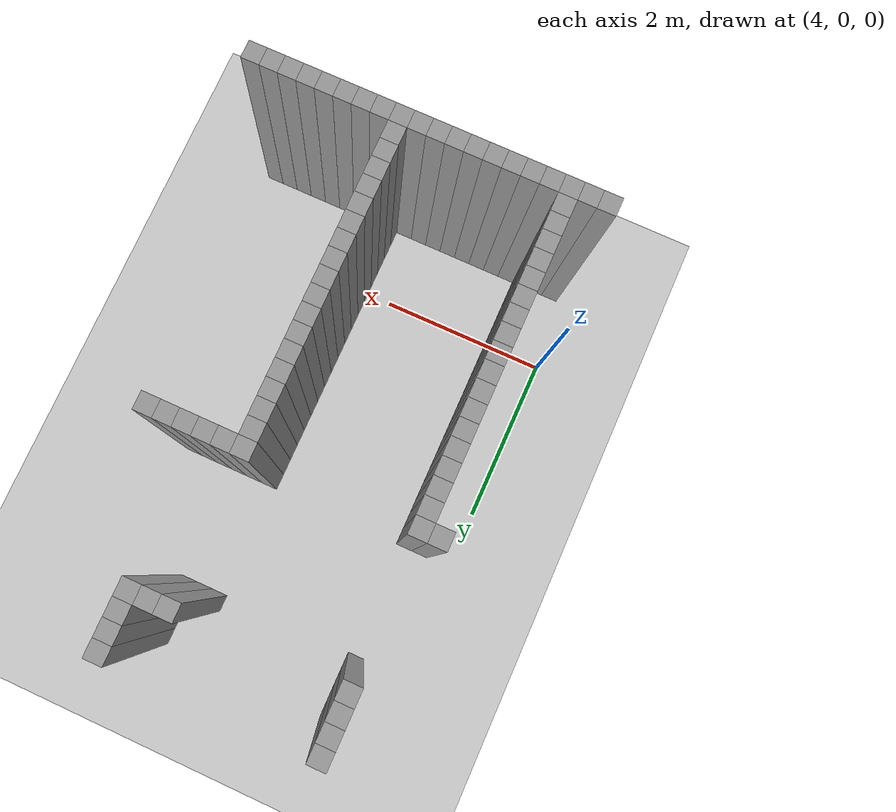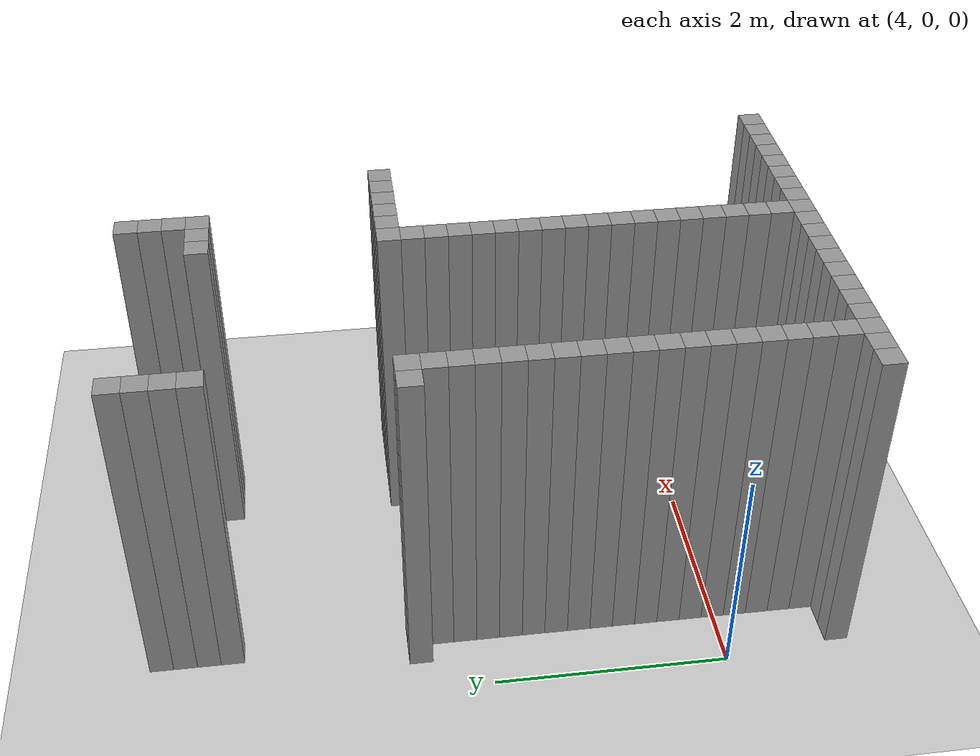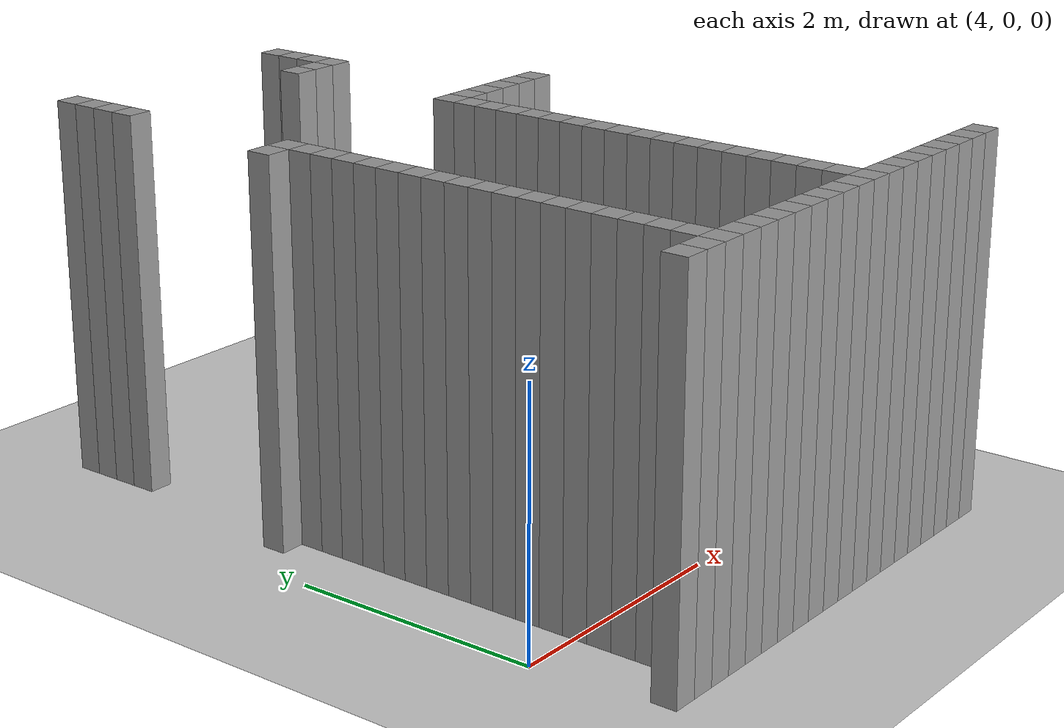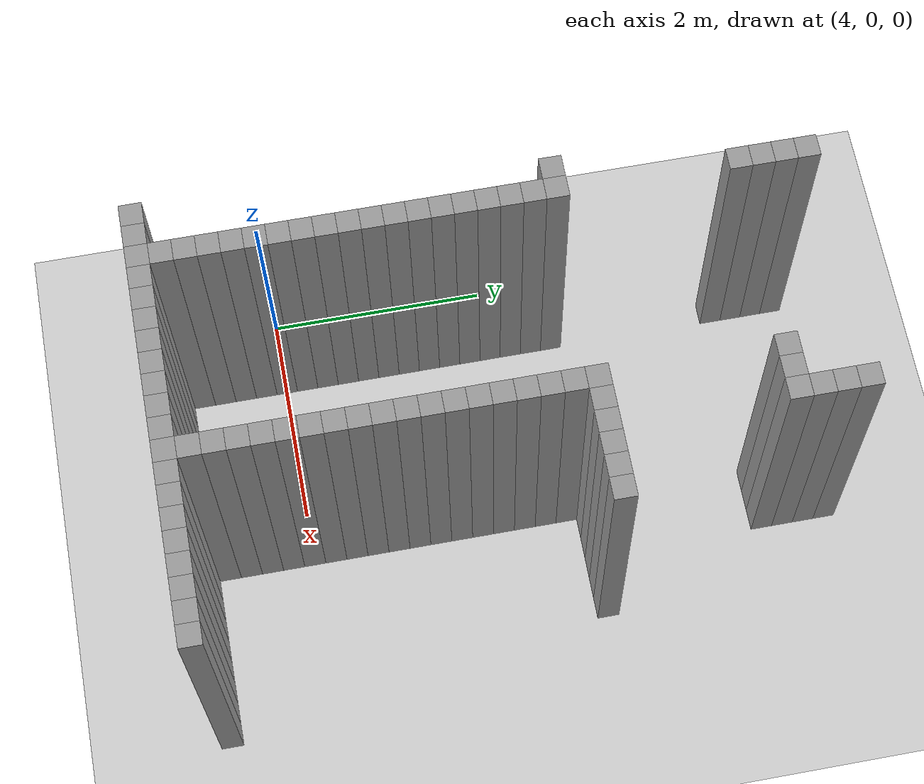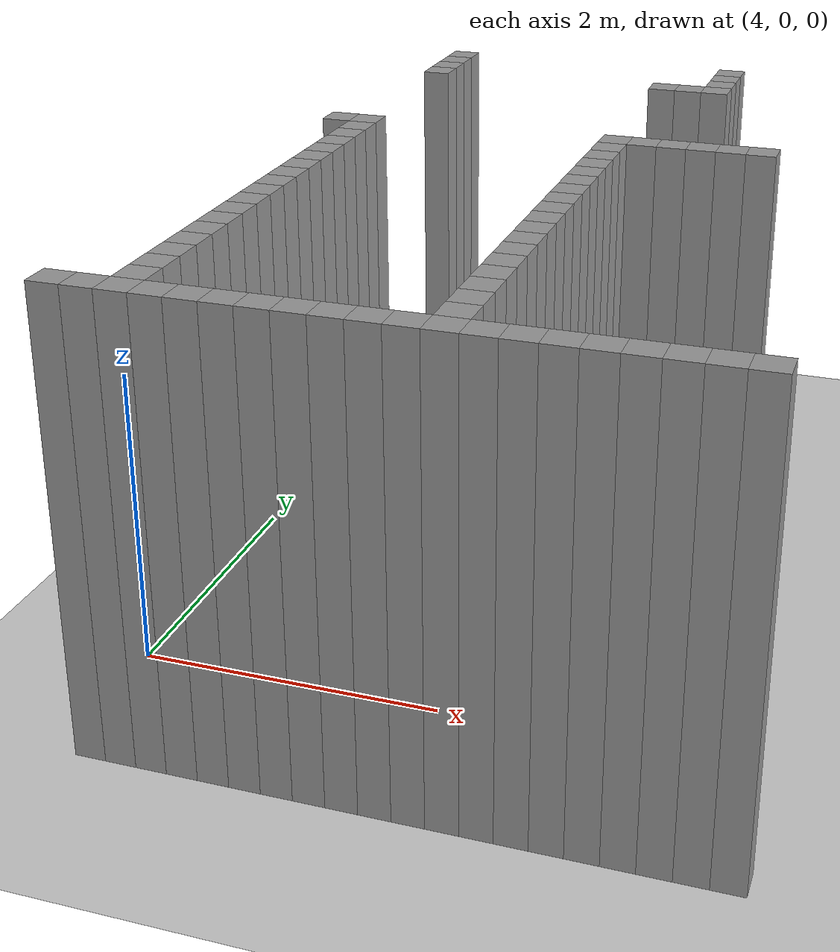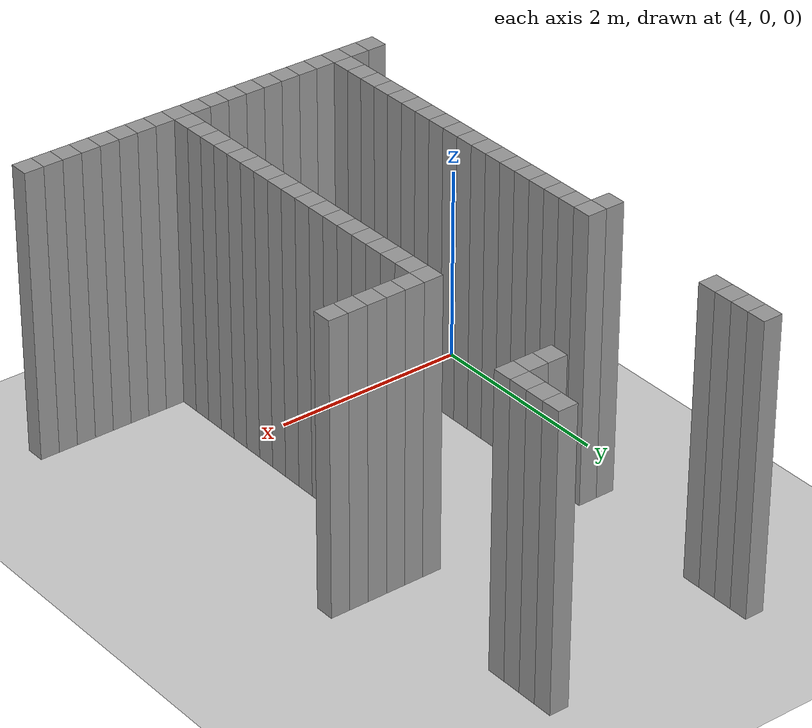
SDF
<sdf version="1.7">
 <world name="default">
  <model name="ground_plane">
   <static>1</static>
   <link name="link">
    <collision name="collision">
     <geometry><plane><normal>0 0 1</normal><size>100 100</size></plane></geometry>
     <surface>
      <contact><collide_bitmask>65535</collide_bitmask></contact>
      <friction><ode><mu>100</mu><mu2>50</mu2></ode></friction>
     </surface>
    </collision>
    <visual name="visual">
     <cast_shadows>0</cast_shadows>
     <geometry><plane><normal>0 0 1</normal><size>100 100</size></plane></geometry>
     <material>
      <script><uri>file://media/materials/scripts/gazebo.material</uri><name>Gazebo/Grey</name></script>
     </material>
    </visual>
   </link>
  </model>
  <model name="image1">
   <pose>-1 -1 0 0 -0 0</pose>
   <link name="Wall_219">
    <collision name="Wall_219_Collision">
     <geometry><box><size>0.2 0.2 3</size></box></geometry>
     <pose>0 0 1.5 0 -0 0</pose>
    </collision>
    <visual name="Wall_219_Visual">
     <pose>0 0 1.5 0 -0 0</pose>
     <geometry><box><size>0.2 0.2 3</size></box></geometry>
     <material>
      <script><uri>file://media/materials/scripts/gazebo.material</uri><name>Gazebo/Grey</name></script>
      <ambient>1 1 1 1</ambient>
     </material>
     <meta><layer>0</layer></meta>
    </visual>
    <pose>5.2 0.0 0 0 -0 0</pose>
   </link>
   <link name="Wall_221">
    <collision name="Wall_221_Collision">
     <geometry><box><size>0.2 0.2 3</size></box></geometry>
     <pose>0 0 1.5 0 -0 0</pose>
    </collision>
    <visual name="Wall_221_Visual">
     <pose>0 0 1.5 0 -0 0</pose>
     <geometry><box><size>0.2 0.2 3</size></box></geometry>
     <material>
      <script><uri>file://media/materials/scripts/gazebo.material</uri><name>Gazebo/Grey</name></script>
      <ambient>1 1 1 1</ambient>
     </material>
     <meta><layer>0</layer></meta>
    </visual>
    <pose>5.4 0.0 0 0 -0 0</pose>
   </link>
   <link name="Wall_222">
    <collision name="Wall_222_Collision">
     <geometry><box><size>0.2 0.2 3</size></box></geometry>
     <pose>0 0 1.5 0 -0 0</pose>
    </collision>
    <visual name="Wall_222_Visual">
     <pose>0 0 1.5 0 -0 0</pose>
     <geometry><box><size>0.2 0.2 3</size></box></geometry>
     <material>
      <script><uri>file://media/materials/scripts/gazebo.material</uri><name>Gazebo/Grey</name></script>
      <ambient>1 1 1 1</ambient>
     </material>
     <meta><layer>0</layer></meta>
    </visual>
    <pose>5.4 3.6 0 0 -0 0</pose>
   </link>
   <link name="Wall_224">
    <collision name="Wall_224_Collision">
     <geometry><box><size>0.2 0.2 3</size></box></geometry>
     <pose>0 0 1.5 0 -0 0</pose>
    </collision>
    <visual name="Wall_224_Visual">
     <pose>0 0 1.5 0 -0 0</pose>
     <geometry><box><size>0.2 0.2 3</size></box></geometry>
     <material>
      <script><uri>file://media/materials/scripts/gazebo.material</uri><name>Gazebo/Grey</name></script>
      <ambient>1 1 1 1</ambient>
     </material>
     <meta><layer>0</layer></meta>
    </visual>
    <pose>5.6000000000000005 0.0 0 0 -0 0</pose>
   </link>
   <link name="Wall_225">
    <collision name="Wall_225_Collision">
     <geometry><box><size>0.2 0.2 3</size></box></geometry>
     <pose>0 0 1.5 0 -0 0</pose>
    </collision>
    <visual name="Wall_225_Visual">
     <pose>0 0 1.5 0 -0 0</pose>
     <geometry><box><size>0.2 0.2 3</size></box></geometry>
     <material>
      <script><uri>file://media/materials/scripts/gazebo.material</uri><name>Gazebo/Grey</name></script>
      <ambient>1 1 1 1</ambient>
     </material>
     <meta><layer>0</layer></meta>
    </visual>
    <pose>5.6000000000000005 0.2 0 0 -0 0</pose>
   </link>
   <link name="Wall_226">
    <collision name="Wall_226_Collision">
     <geometry><box><size>0.2 0.2 3</size></box></geometry>
     <pose>0 0 1.5 0 -0 0</pose>
    </collision>
    <visual name="Wall_226_Visual">
     <pose>0 0 1.5 0 -0 0</pose>
     <geometry><box><size>0.2 0.2 3</size></box></geometry>
     <material>
      <script><uri>file://media/materials/scripts/gazebo.material</uri><name>Gazebo/Grey</name></script>
      <ambient>1 1 1 1</ambient>
     </material>
     <meta><layer>0</layer></meta>
    </visual>
    <pose>5.6000000000000005 0.4 0 0 -0 0</pose>
   </link>
   <link name="Wall_227">
    <collision name="Wall_227_Collision">
     <geometry><box><size>0.2 0.2 3</size></box></geometry>
     <pose>0 0 1.5 0 -0 0</pose>
    </collision>
    <visual name="Wall_227_Visual">
     <pose>0 0 1.5 0 -0 0</pose>
     <geometry><box><size>0.2 0.2 3</size></box></geometry>
     <material>
      <script><uri>file://media/materials/scripts/gazebo.material</uri><name>Gazebo/Grey</name></script>
      <ambient>1 1 1 1</ambient>
     </material>
     <meta><layer>0</layer></meta>
    </visual>
    <pose>5.6000000000000005 0.6000000000000001 0 0 -0 0</pose>
   </link>
   <link name="Wall_228">
    <collision name="Wall_228_Collision">
     <geometry><box><size>0.2 0.2 3</size></box></geometry>
     <pose>0 0 1.5 0 -0 0</pose>
    </collision>
    <visual name="Wall_228_Visual">
     <pose>0 0 1.5 0 -0 0</pose>
     <geometry><box><size>0.2 0.2 3</size></box></geometry>
     <material>
      <script><uri>file://media/materials/scripts/gazebo.material</uri><name>Gazebo/Grey</name></script>
      <ambient>1 1 1 1</ambient>
     </material>
     <meta><layer>0</layer></meta>
    </visual>
    <pose>5.6000000000000005 0.8 0 0 -0 0</pose>
   </link>
   <link name="Wall_229">
    <collision name="Wall_229_Collision">
     <geometry><box><size>0.2 0.2 3</size></box></geometry>
     <pose>0 0 1.5 0 -0 0</pose>
    </collision>
    <visual name="Wall_229_Visual">
     <pose>0 0 1.5 0 -0 0</pose>
     <geometry><box><size>0.2 0.2 3</size></box></geometry>
     <material>
      <script><uri>file://media/materials/scripts/gazebo.material</uri><name>Gazebo/Grey</name></script>
      <ambient>1 1 1 1</ambient>
     </material>
     <meta><layer>0</layer></meta>
    </visual>
    <pose>5.6000000000000005 1.0 0 0 -0 0</pose>
   </link>
   <link name="Wall_230">
    <collision name="Wall_230_Collision">
     <geometry><box><size>0.2 0.2 3</size></box></geometry>
     <pose>0 0 1.5 0 -0 0</pose>
    </collision>
    <visual name="Wall_230_Visual">
     <pose>0 0 1.5 0 -0 0</pose>
     <geometry><box><size>0.2 0.2 3</size></box></geometry>
     <material>
      <script><uri>file://media/materials/scripts/gazebo.material</uri><name>Gazebo/Grey</name></script>
      <ambient>1 1 1 1</ambient>
     </material>
     <meta><layer>0</layer></meta>
    </visual>
    <pose>5.6000000000000005 1.2000000000000002 0 0 -0 0</pose>
   </link>
   <link name="Wall_231">
    <collision name="Wall_231_Collision">
     <geometry><box><size>0.2 0.2 3</size></box></geometry>
     <pose>0 0 1.5 0 -0 0</pose>
    </collision>
    <visual name="Wall_231_Visual">
     <pose>0 0 1.5 0 -0 0</pose>
     <geometry><box><size>0.2 0.2 3</size></box></geometry>
     <material>
      <script><uri>file://media/materials/scripts/gazebo.material</uri><name>Gazebo/Grey</name></script>
      <ambient>1 1 1 1</ambient>
     </material>
     <meta><layer>0</layer></meta>
    </visual>
    <pose>5.6000000000000005 1.4000000000000001 0 0 -0 0</pose>
   </link>
   <link name="Wall_232">
    <collision name="Wall_232_Collision">
     <geometry><box><size>0.2 0.2 3</size></box></geometry>
     <pose>0 0 1.5 0 -0 0</pose>
    </collision>
    <visual name="Wall_232_Visual">
     <pose>0 0 1.5 0 -0 0</pose>
     <geometry><box><size>0.2 0.2 3</size></box></geometry>
     <material>
      <script><uri>file://media/materials/scripts/gazebo.material</uri><name>Gazebo/Grey</name></script>
      <ambient>1 1 1 1</ambient>
     </material>
     <meta><layer>0</layer></meta>
    </visual>
    <pose>5.6000000000000005 1.6 0 0 -0 0</pose>
   </link>
   <link name="Wall_233">
    <collision name="Wall_233_Collision">
     <geometry><box><size>0.2 0.2 3</size></box></geometry>
     <pose>0 0 1.5 0 -0 0</pose>
    </collision>
    <visual name="Wall_233_Visual">
     <pose>0 0 1.5 0 -0 0</pose>
     <geometry><box><size>0.2 0.2 3</size></box></geometry>
     <material>
      <script><uri>file://media/materials/scripts/gazebo.material</uri><name>Gazebo/Grey</name></script>
      <ambient>1 1 1 1</ambient>
     </material>
     <meta><layer>0</layer></meta>
    </visual>
    <pose>5.6000000000000005 1.8 0 0 -0 0</pose>
   </link>
   <link name="Wall_234">
    <collision name="Wall_234_Collision">
     <geometry><box><size>0.2 0.2 3</size></box></geometry>
     <pose>0 0 1.5 0 -0 0</pose>
    </collision>
    <visual name="Wall_234_Visual">
     <pose>0 0 1.5 0 -0 0</pose>
     <geometry><box><size>0.2 0.2 3</size></box></geometry>
     <material>
      <script><uri>file://media/materials/scripts/gazebo.material</uri><name>Gazebo/Grey</name></script>
      <ambient>1 1 1 1</ambient>
     </material>
     <meta><layer>0</layer></meta>
    </visual>
    <pose>5.6000000000000005 2.0 0 0 -0 0</pose>
   </link>
   <link name="Wall_235">
    <collision name="Wall_235_Collision">
     <geometry><box><size>0.2 0.2 3</size></box></geometry>
     <pose>0 0 1.5 0 -0 0</pose>
    </collision>
    <visual name="Wall_235_Visual">
     <pose>0 0 1.5 0 -0 0</pose>
     <geometry><box><size>0.2 0.2 3</size></box></geometry>
     <material>
      <script><uri>file://media/materials/scripts/gazebo.material</uri><name>Gazebo/Grey</name></script>
      <ambient>1 1 1 1</ambient>
     </material>
     <meta><layer>0</layer></meta>
    </visual>
    <pose>5.6000000000000005 2.2 0 0 -0 0</pose>
   </link>
   <link name="Wall_236">
    <collision name="Wall_236_Collision">
     <geometry><box><size>0.2 0.2 3</size></box></geometry>
     <pose>0 0 1.5 0 -0 0</pose>
    </collision>
    <visual name="Wall_236_Visual">
     <pose>0 0 1.5 0 -0 0</pose>
     <geometry><box><size>0.2 0.2 3</size></box></geometry>
     <material>
      <script><uri>file://media/materials/scripts/gazebo.material</uri><name>Gazebo/Grey</name></script>
      <ambient>1 1 1 1</ambient>
     </material>
     <meta><layer>0</layer></meta>
    </visual>
    <pose>5.6000000000000005 2.4000000000000004 0 0 -0 0</pose>
   </link>
   <link name="Wall_237">
    <collision name="Wall_237_Collision">
     <geometry><box><size>0.2 0.2 3</size></box></geometry>
     <pose>0 0 1.5 0 -0 0</pose>
    </collision>
    <visual name="Wall_237_Visual">
     <pose>0 0 1.5 0 -0 0</pose>
     <geometry><box><size>0.2 0.2 3</size></box></geometry>
     <material>
      <script><uri>file://media/materials/scripts/gazebo.material</uri><name>Gazebo/Grey</name></script>
      <ambient>1 1 1 1</ambient>
     </material>
     <meta><layer>0</layer></meta>
    </visual>
    <pose>5.6000000000000005 2.6 0 0 -0 0</pose>
   </link>
   <link name="Wall_238">
    <collision name="Wall_238_Collision">
     <geometry><box><size>0.2 0.2 3</size></box></geometry>
     <pose>0 0 1.5 0 -0 0</pose>
    </collision>
    <visual name="Wall_238_Visual">
     <pose>0 0 1.5 0 -0 0</pose>
     <geometry><box><size>0.2 0.2 3</size></box></geometry>
     <material>
      <script><uri>file://media/materials/scripts/gazebo.material</uri><name>Gazebo/Grey</name></script>
      <ambient>1 1 1 1</ambient>
     </material>
     <meta><layer>0</layer></meta>
    </visual>
    <pose>5.6000000000000005 2.8000000000000003 0 0 -0 0</pose>
   </link>
   <link name="Wall_239">
    <collision name="Wall_239_Collision">
     <geometry><box><size>0.2 0.2 3</size></box></geometry>
     <pose>0 0 1.5 0 -0 0</pose>
    </collision>
    <visual name="Wall_239_Visual">
     <pose>0 0 1.5 0 -0 0</pose>
     <geometry><box><size>0.2 0.2 3</size></box></geometry>
     <material>
      <script><uri>file://media/materials/scripts/gazebo.material</uri><name>Gazebo/Grey</name></script>
      <ambient>1 1 1 1</ambient>
     </material>
     <meta><layer>0</layer></meta>
    </visual>
    <pose>5.6000000000000005 3.0 0 0 -0 0</pose>
   </link>
   <link name="Wall_240">
    <collision name="Wall_240_Collision">
     <geometry><box><size>0.2 0.2 3</size></box></geometry>
     <pose>0 0 1.5 0 -0 0</pose>
    </collision>
    <visual name="Wall_240_Visual">
     <pose>0 0 1.5 0 -0 0</pose>
     <geometry><box><size>0.2 0.2 3</size></box></geometry>
     <material>
      <script><uri>file://media/materials/scripts/gazebo.material</uri><name>Gazebo/Grey</name></script>
      <ambient>1 1 1 1</ambient>
     </material>
     <meta><layer>0</layer></meta>
    </visual>
    <pose>5.6000000000000005 3.2 0 0 -0 0</pose>
   </link>
   <link name="Wall_241">
    <collision name="Wall_241_Collision">
     <geometry><box><size>0.2 0.2 3</size></box></geometry>
     <pose>0 0 1.5 0 -0 0</pose>
    </collision>
    <visual name="Wall_241_Visual">
     <pose>0 0 1.5 0 -0 0</pose>
     <geometry><box><size>0.2 0.2 3</size></box></geometry>
     <material>
      <script><uri>file://media/materials/scripts/gazebo.material</uri><name>Gazebo/Grey</name></script>
      <ambient>1 1 1 1</ambient>
     </material>
     <meta><layer>0</layer></meta>
    </visual>
    <pose>5.6000000000000005 3.4000000000000004 0 0 -0 0</pose>
   </link>
   <link name="Wall_242">
    <collision name="Wall_242_Collision">
     <geometry><box><size>0.2 0.2 3</size></box></geometry>
     <pose>0 0 1.5 0 -0 0</pose>
    </collision>
    <visual name="Wall_242_Visual">
     <pose>0 0 1.5 0 -0 0</pose>
     <geometry><box><size>0.2 0.2 3</size></box></geometry>
     <material>
      <script><uri>file://media/materials/scripts/gazebo.material</uri><name>Gazebo/Grey</name></script>
      <ambient>1 1 1 1</ambient>
     </material>
     <meta><layer>0</layer></meta>
    </visual>
    <pose>5.6000000000000005 3.6 0 0 -0 0</pose>
   </link>
   <link name="Wall_243">
    <collision name="Wall_243_Collision">
     <geometry><box><size>0.2 0.2 3</size></box></geometry>
     <pose>0 0 1.5 0 -0 0</pose>
    </collision>
    <visual name="Wall_243_Visual">
     <pose>0 0 1.5 0 -0 0</pose>
     <geometry><box><size>0.2 0.2 3</size></box></geometry>
     <material>
      <script><uri>file://media/materials/scripts/gazebo.material</uri><name>Gazebo/Grey</name></script>
      <ambient>1 1 1 1</ambient>
     </material>
     <meta><layer>0</layer></meta>
    </visual>
    <pose>5.6000000000000005 5.2 0 0 -0 0</pose>
   </link>
   <link name="Wall_244">
    <collision name="Wall_244_Collision">
     <geometry><box><size>0.2 0.2 3</size></box></geometry>
     <pose>0 0 1.5 0 -0 0</pose>
    </collision>
    <visual name="Wall_244_Visual">
     <pose>0 0 1.5 0 -0 0</pose>
     <geometry><box><size>0.2 0.2 3</size></box></geometry>
     <material>
      <script><uri>file://media/materials/scripts/gazebo.material</uri><name>Gazebo/Grey</name></script>
      <ambient>1 1 1 1</ambient>
     </material>
     <meta><layer>0</layer></meta>
    </visual>
    <pose>5.6000000000000005 5.4 0 0 -0 0</pose>
   </link>
   <link name="Wall_245">
    <collision name="Wall_245_Collision">
     <geometry><box><size>0.2 0.2 3</size></box></geometry>
     <pose>0 0 1.5 0 -0 0</pose>
    </collision>
    <visual name="Wall_245_Visual">
     <pose>0 0 1.5 0 -0 0</pose>
     <geometry><box><size>0.2 0.2 3</size></box></geometry>
     <material>
      <script><uri>file://media/materials/scripts/gazebo.material</uri><name>Gazebo/Grey</name></script>
      <ambient>1 1 1 1</ambient>
     </material>
     <meta><layer>0</layer></meta>
    </visual>
    <pose>5.6000000000000005 5.6000000000000005 0 0 -0 0</pose>
   </link>
   <link name="Wall_246">
    <collision name="Wall_246_Collision">
     <geometry><box><size>0.2 0.2 3</size></box></geometry>
     <pose>0 0 1.5 0 -0 0</pose>
    </collision>
    <visual name="Wall_246_Visual">
     <pose>0 0 1.5 0 -0 0</pose>
     <geometry><box><size>0.2 0.2 3</size></box></geometry>
     <material>
      <script><uri>file://media/materials/scripts/gazebo.material</uri><name>Gazebo/Grey</name></script>
      <ambient>1 1 1 1</ambient>
     </material>
     <meta><layer>0</layer></meta>
    </visual>
    <pose>5.6000000000000005 5.800000000000001 0 0 -0 0</pose>
   </link>
   <link name="Wall_256">
    <collision name="Wall_256_Collision">
     <geometry><box><size>0.2 0.2 3</size></box></geometry>
     <pose>0 0 1.5 0 -0 0</pose>
    </collision>
    <visual name="Wall_256_Visual">
     <pose>0 0 1.5 0 -0 0</pose>
     <geometry><box><size>0.2 0.2 3</size></box></geometry>
     <material>
      <script><uri>file://media/materials/scripts/gazebo.material</uri><name>Gazebo/Grey</name></script>
      <ambient>1 1 1 1</ambient>
     </material>
     <meta><layer>0</layer></meta>
    </visual>
    <pose>5.800000000000001 0.0 0 0 -0 0</pose>
   </link>
   <link name="Wall_259">
    <collision name="Wall_259_Collision">
     <geometry><box><size>0.2 0.2 3</size></box></geometry>
     <pose>0 0 1.5 0 -0 0</pose>
    </collision>
    <visual name="Wall_259_Visual">
     <pose>0 0 1.5 0 -0 0</pose>
     <geometry><box><size>0.2 0.2 3</size></box></geometry>
     <material>
      <script><uri>file://media/materials/scripts/gazebo.material</uri><name>Gazebo/Grey</name></script>
      <ambient>1 1 1 1</ambient>
     </material>
     <meta><layer>0</layer></meta>
    </visual>
    <pose>6.0 0.0 0 0 -0 0</pose>
   </link>
   <link name="Wall_262">
    <collision name="Wall_262_Collision">
     <geometry><box><size>0.2 0.2 3</size></box></geometry>
     <pose>0 0 1.5 0 -0 0</pose>
    </collision>
    <visual name="Wall_262_Visual">
     <pose>0 0 1.5 0 -0 0</pose>
     <geometry><box><size>0.2 0.2 3</size></box></geometry>
     <material>
      <script><uri>file://media/materials/scripts/gazebo.material</uri><name>Gazebo/Grey</name></script>
      <ambient>1 1 1 1</ambient>
     </material>
     <meta><layer>0</layer></meta>
    </visual>
    <pose>6.2 0.0 0 0 -0 0</pose>
   </link>
   <link name="Wall_265">
    <collision name="Wall_265_Collision">
     <geometry><box><size>0.2 0.2 3</size></box></geometry>
     <pose>0 0 1.5 0 -0 0</pose>
    </collision>
    <visual name="Wall_265_Visual">
     <pose>0 0 1.5 0 -0 0</pose>
     <geometry><box><size>0.2 0.2 3</size></box></geometry>
     <material>
      <script><uri>file://media/materials/scripts/gazebo.material</uri><name>Gazebo/Grey</name></script>
      <ambient>1 1 1 1</ambient>
     </material>
     <meta><layer>0</layer></meta>
    </visual>
    <pose>6.4 0.0 0 0 -0 0</pose>
   </link>
   <link name="Wall_283">
    <collision name="Wall_283_Collision">
     <geometry><box><size>0.2 0.2 3</size></box></geometry>
     <pose>0 0 1.5 0 -0 0</pose>
    </collision>
    <visual name="Wall_283_Visual">
     <pose>0 0 1.5 0 -0 0</pose>
     <geometry><box><size>0.2 0.2 3</size></box></geometry>
     <material>
      <script><uri>file://media/materials/scripts/gazebo.material</uri><name>Gazebo/Grey</name></script>
      <ambient>1 1 1 1</ambient>
     </material>
     <meta><layer>0</layer></meta>
    </visual>
    <pose>6.6000000000000005 0.0 0 0 -0 0</pose>
   </link>
   <link name="Wall_287">
    <collision name="Wall_287_Collision">
     <geometry><box><size>0.2 0.2 3</size></box></geometry>
     <pose>0 0 1.5 0 -0 0</pose>
    </collision>
    <visual name="Wall_287_Visual">
     <pose>0 0 1.5 0 -0 0</pose>
     <geometry><box><size>0.2 0.2 3</size></box></geometry>
     <material>
      <script><uri>file://media/materials/scripts/gazebo.material</uri><name>Gazebo/Grey</name></script>
      <ambient>1 1 1 1</ambient>
     </material>
     <meta><layer>0</layer></meta>
    </visual>
    <pose>6.800000000000001 0.0 0 0 -0 0</pose>
   </link>
   <link name="Wall_291">
    <collision name="Wall_291_Collision">
     <geometry><box><size>0.2 0.2 3</size></box></geometry>
     <pose>0 0 1.5 0 -0 0</pose>
    </collision>
    <visual name="Wall_291_Visual">
     <pose>0 0 1.5 0 -0 0</pose>
     <geometry><box><size>0.2 0.2 3</size></box></geometry>
     <material>
      <script><uri>file://media/materials/scripts/gazebo.material</uri><name>Gazebo/Grey</name></script>
      <ambient>1 1 1 1</ambient>
     </material>
     <meta><layer>0</layer></meta>
    </visual>
    <pose>7.0 0.0 0 0 -0 0</pose>
   </link>
   <link name="Wall_295">
    <collision name="Wall_295_Collision">
     <geometry><box><size>0.2 0.2 3</size></box></geometry>
     <pose>0 0 1.5 0 -0 0</pose>
    </collision>
    <visual name="Wall_295_Visual">
     <pose>0 0 1.5 0 -0 0</pose>
     <geometry><box><size>0.2 0.2 3</size></box></geometry>
     <material>
      <script><uri>file://media/materials/scripts/gazebo.material</uri><name>Gazebo/Grey</name></script>
      <ambient>1 1 1 1</ambient>
     </material>
     <meta><layer>0</layer></meta>
    </visual>
    <pose>7.2 0.0 0 0 -0 0</pose>
   </link>
   <link name="Wall_299">
    <collision name="Wall_299_Collision">
     <geometry><box><size>0.2 0.2 3</size></box></geometry>
     <pose>0 0 1.5 0 -0 0</pose>
    </collision>
    <visual name="Wall_299_Visual">
     <pose>0 0 1.5 0 -0 0</pose>
     <geometry><box><size>0.2 0.2 3</size></box></geometry>
     <material>
      <script><uri>file://media/materials/scripts/gazebo.material</uri><name>Gazebo/Grey</name></script>
      <ambient>1 1 1 1</ambient>
     </material>
     <meta><layer>0</layer></meta>
    </visual>
    <pose>7.4 0.0 0 0 -0 0</pose>
   </link>
   <link name="Wall_300">
    <collision name="Wall_300_Collision">
     <geometry><box><size>0.2 0.2 3</size></box></geometry>
     <pose>0 0 1.5 0 -0 0</pose>
    </collision>
    <visual name="Wall_300_Visual">
     <pose>0 0 1.5 0 -0 0</pose>
     <geometry><box><size>0.2 0.2 3</size></box></geometry>
     <material>
      <script><uri>file://media/materials/scripts/gazebo.material</uri><name>Gazebo/Grey</name></script>
      <ambient>1 1 1 1</ambient>
     </material>
     <meta><layer>0</layer></meta>
    </visual>
    <pose>7.4 0.2 0 0 -0 0</pose>
   </link>
   <link name="Wall_301">
    <collision name="Wall_301_Collision">
     <geometry><box><size>0.2 0.2 3</size></box></geometry>
     <pose>0 0 1.5 0 -0 0</pose>
    </collision>
    <visual name="Wall_301_Visual">
     <pose>0 0 1.5 0 -0 0</pose>
     <geometry><box><size>0.2 0.2 3</size></box></geometry>
     <material>
      <script><uri>file://media/materials/scripts/gazebo.material</uri><name>Gazebo/Grey</name></script>
      <ambient>1 1 1 1</ambient>
     </material>
     <meta><layer>0</layer></meta>
    </visual>
    <pose>7.4 0.4 0 0 -0 0</pose>
   </link>
   <link name="Wall_302">
    <collision name="Wall_302_Collision">
     <geometry><box><size>0.2 0.2 3</size></box></geometry>
     <pose>0 0 1.5 0 -0 0</pose>
    </collision>
    <visual name="Wall_302_Visual">
     <pose>0 0 1.5 0 -0 0</pose>
     <geometry><box><size>0.2 0.2 3</size></box></geometry>
     <material>
      <script><uri>file://media/materials/scripts/gazebo.material</uri><name>Gazebo/Grey</name></script>
      <ambient>1 1 1 1</ambient>
     </material>
     <meta><layer>0</layer></meta>
    </visual>
    <pose>7.4 0.6000000000000001 0 0 -0 0</pose>
   </link>
   <link name="Wall_303">
    <collision name="Wall_303_Collision">
     <geometry><box><size>0.2 0.2 3</size></box></geometry>
     <pose>0 0 1.5 0 -0 0</pose>
    </collision>
    <visual name="Wall_303_Visual">
     <pose>0 0 1.5 0 -0 0</pose>
     <geometry><box><size>0.2 0.2 3</size></box></geometry>
     <material>
      <script><uri>file://media/materials/scripts/gazebo.material</uri><name>Gazebo/Grey</name></script>
      <ambient>1 1 1 1</ambient>
     </material>
     <meta><layer>0</layer></meta>
    </visual>
    <pose>7.4 0.8 0 0 -0 0</pose>
   </link>
   <link name="Wall_304">
    <collision name="Wall_304_Collision">
     <geometry><box><size>0.2 0.2 3</size></box></geometry>
     <pose>0 0 1.5 0 -0 0</pose>
    </collision>
    <visual name="Wall_304_Visual">
     <pose>0 0 1.5 0 -0 0</pose>
     <geometry><box><size>0.2 0.2 3</size></box></geometry>
     <material>
      <script><uri>file://media/materials/scripts/gazebo.material</uri><name>Gazebo/Grey</name></script>
      <ambient>1 1 1 1</ambient>
     </material>
     <meta><layer>0</layer></meta>
    </visual>
    <pose>7.4 1.0 0 0 -0 0</pose>
   </link>
   <link name="Wall_305">
    <collision name="Wall_305_Collision">
     <geometry><box><size>0.2 0.2 3</size></box></geometry>
     <pose>0 0 1.5 0 -0 0</pose>
    </collision>
    <visual name="Wall_305_Visual">
     <pose>0 0 1.5 0 -0 0</pose>
     <geometry><box><size>0.2 0.2 3</size></box></geometry>
     <material>
      <script><uri>file://media/materials/scripts/gazebo.material</uri><name>Gazebo/Grey</name></script>
      <ambient>1 1 1 1</ambient>
     </material>
     <meta><layer>0</layer></meta>
    </visual>
    <pose>7.4 1.2000000000000002 0 0 -0 0</pose>
   </link>
   <link name="Wall_306">
    <collision name="Wall_306_Collision">
     <geometry><box><size>0.2 0.2 3</size></box></geometry>
     <pose>0 0 1.5 0 -0 0</pose>
    </collision>
    <visual name="Wall_306_Visual">
     <pose>0 0 1.5 0 -0 0</pose>
     <geometry><box><size>0.2 0.2 3</size></box></geometry>
     <material>
      <script><uri>file://media/materials/scripts/gazebo.material</uri><name>Gazebo/Grey</name></script>
      <ambient>1 1 1 1</ambient>
     </material>
     <meta><layer>0</layer></meta>
    </visual>
    <pose>7.4 1.4000000000000001 0 0 -0 0</pose>
   </link>
   <link name="Wall_307">
    <collision name="Wall_307_Collision">
     <geometry><box><size>0.2 0.2 3</size></box></geometry>
     <pose>0 0 1.5 0 -0 0</pose>
    </collision>
    <visual name="Wall_307_Visual">
     <pose>0 0 1.5 0 -0 0</pose>
     <geometry><box><size>0.2 0.2 3</size></box></geometry>
     <material>
      <script><uri>file://media/materials/scripts/gazebo.material</uri><name>Gazebo/Grey</name></script>
      <ambient>1 1 1 1</ambient>
     </material>
     <meta><layer>0</layer></meta>
    </visual>
    <pose>7.4 1.6 0 0 -0 0</pose>
   </link>
   <link name="Wall_308">
    <collision name="Wall_308_Collision">
     <geometry><box><size>0.2 0.2 3</size></box></geometry>
     <pose>0 0 1.5 0 -0 0</pose>
    </collision>
    <visual name="Wall_308_Visual">
     <pose>0 0 1.5 0 -0 0</pose>
     <geometry><box><size>0.2 0.2 3</size></box></geometry>
     <material>
      <script><uri>file://media/materials/scripts/gazebo.material</uri><name>Gazebo/Grey</name></script>
      <ambient>1 1 1 1</ambient>
     </material>
     <meta><layer>0</layer></meta>
    </visual>
    <pose>7.4 1.8 0 0 -0 0</pose>
   </link>
   <link name="Wall_309">
    <collision name="Wall_309_Collision">
     <geometry><box><size>0.2 0.2 3</size></box></geometry>
     <pose>0 0 1.5 0 -0 0</pose>
    </collision>
    <visual name="Wall_309_Visual">
     <pose>0 0 1.5 0 -0 0</pose>
     <geometry><box><size>0.2 0.2 3</size></box></geometry>
     <material>
      <script><uri>file://media/materials/scripts/gazebo.material</uri><name>Gazebo/Grey</name></script>
      <ambient>1 1 1 1</ambient>
     </material>
     <meta><layer>0</layer></meta>
    </visual>
    <pose>7.4 2.0 0 0 -0 0</pose>
   </link>
   <link name="Wall_310">
    <collision name="Wall_310_Collision">
     <geometry><box><size>0.2 0.2 3</size></box></geometry>
     <pose>0 0 1.5 0 -0 0</pose>
    </collision>
    <visual name="Wall_310_Visual">
     <pose>0 0 1.5 0 -0 0</pose>
     <geometry><box><size>0.2 0.2 3</size></box></geometry>
     <material>
      <script><uri>file://media/materials/scripts/gazebo.material</uri><name>Gazebo/Grey</name></script>
      <ambient>1 1 1 1</ambient>
     </material>
     <meta><layer>0</layer></meta>
    </visual>
    <pose>7.4 2.2 0 0 -0 0</pose>
   </link>
   <link name="Wall_311">
    <collision name="Wall_311_Collision">
     <geometry><box><size>0.2 0.2 3</size></box></geometry>
     <pose>0 0 1.5 0 -0 0</pose>
    </collision>
    <visual name="Wall_311_Visual">
     <pose>0 0 1.5 0 -0 0</pose>
     <geometry><box><size>0.2 0.2 3</size></box></geometry>
     <material>
      <script><uri>file://media/materials/scripts/gazebo.material</uri><name>Gazebo/Grey</name></script>
      <ambient>1 1 1 1</ambient>
     </material>
     <meta><layer>0</layer></meta>
    </visual>
    <pose>7.4 2.4000000000000004 0 0 -0 0</pose>
   </link>
   <link name="Wall_312">
    <collision name="Wall_312_Collision">
     <geometry><box><size>0.2 0.2 3</size></box></geometry>
     <pose>0 0 1.5 0 -0 0</pose>
    </collision>
    <visual name="Wall_312_Visual">
     <pose>0 0 1.5 0 -0 0</pose>
     <geometry><box><size>0.2 0.2 3</size></box></geometry>
     <material>
      <script><uri>file://media/materials/scripts/gazebo.material</uri><name>Gazebo/Grey</name></script>
      <ambient>1 1 1 1</ambient>
     </material>
     <meta><layer>0</layer></meta>
    </visual>
    <pose>7.4 2.6 0 0 -0 0</pose>
   </link>
   <link name="Wall_313">
    <collision name="Wall_313_Collision">
     <geometry><box><size>0.2 0.2 3</size></box></geometry>
     <pose>0 0 1.5 0 -0 0</pose>
    </collision>
    <visual name="Wall_313_Visual">
     <pose>0 0 1.5 0 -0 0</pose>
     <geometry><box><size>0.2 0.2 3</size></box></geometry>
     <material>
      <script><uri>file://media/materials/scripts/gazebo.material</uri><name>Gazebo/Grey</name></script>
      <ambient>1 1 1 1</ambient>
     </material>
     <meta><layer>0</layer></meta>
    </visual>
    <pose>7.4 2.8000000000000003 0 0 -0 0</pose>
   </link>
   <link name="Wall_314">
    <collision name="Wall_314_Collision">
     <geometry><box><size>0.2 0.2 3</size></box></geometry>
     <pose>0 0 1.5 0 -0 0</pose>
    </collision>
    <visual name="Wall_314_Visual">
     <pose>0 0 1.5 0 -0 0</pose>
     <geometry><box><size>0.2 0.2 3</size></box></geometry>
     <material>
      <script><uri>file://media/materials/scripts/gazebo.material</uri><name>Gazebo/Grey</name></script>
      <ambient>1 1 1 1</ambient>
     </material>
     <meta><layer>0</layer></meta>
    </visual>
    <pose>7.4 3.0 0 0 -0 0</pose>
   </link>
   <link name="Wall_315">
    <collision name="Wall_315_Collision">
     <geometry><box><size>0.2 0.2 3</size></box></geometry>
     <pose>0 0 1.5 0 -0 0</pose>
    </collision>
    <visual name="Wall_315_Visual">
     <pose>0 0 1.5 0 -0 0</pose>
     <geometry><box><size>0.2 0.2 3</size></box></geometry>
     <material>
      <script><uri>file://media/materials/scripts/gazebo.material</uri><name>Gazebo/Grey</name></script>
      <ambient>1 1 1 1</ambient>
     </material>
     <meta><layer>0</layer></meta>
    </visual>
    <pose>7.4 3.2 0 0 -0 0</pose>
   </link>
   <link name="Wall_316">
    <collision name="Wall_316_Collision">
     <geometry><box><size>0.2 0.2 3</size></box></geometry>
     <pose>0 0 1.5 0 -0 0</pose>
    </collision>
    <visual name="Wall_316_Visual">
     <pose>0 0 1.5 0 -0 0</pose>
     <geometry><box><size>0.2 0.2 3</size></box></geometry>
     <material>
      <script><uri>file://media/materials/scripts/gazebo.material</uri><name>Gazebo/Grey</name></script>
      <ambient>1 1 1 1</ambient>
     </material>
     <meta><layer>0</layer></meta>
    </visual>
    <pose>7.4 3.4000000000000004 0 0 -0 0</pose>
   </link>
   <link name="Wall_317">
    <collision name="Wall_317_Collision">
     <geometry><box><size>0.2 0.2 3</size></box></geometry>
     <pose>0 0 1.5 0 -0 0</pose>
    </collision>
    <visual name="Wall_317_Visual">
     <pose>0 0 1.5 0 -0 0</pose>
     <geometry><box><size>0.2 0.2 3</size></box></geometry>
     <material>
      <script><uri>file://media/materials/scripts/gazebo.material</uri><name>Gazebo/Grey</name></script>
      <ambient>1 1 1 1</ambient>
     </material>
     <meta><layer>0</layer></meta>
    </visual>
    <pose>7.4 3.6 0 0 -0 0</pose>
   </link>
   <link name="Wall_318">
    <collision name="Wall_318_Collision">
     <geometry><box><size>0.2 0.2 3</size></box></geometry>
     <pose>0 0 1.5 0 -0 0</pose>
    </collision>
    <visual name="Wall_318_Visual">
     <pose>0 0 1.5 0 -0 0</pose>
     <geometry><box><size>0.2 0.2 3</size></box></geometry>
     <material>
      <script><uri>file://media/materials/scripts/gazebo.material</uri><name>Gazebo/Grey</name></script>
      <ambient>1 1 1 1</ambient>
     </material>
     <meta><layer>0</layer></meta>
    </visual>
    <pose>7.4 5.2 0 0 -0 0</pose>
   </link>
   <link name="Wall_321">
    <collision name="Wall_321_Collision">
     <geometry><box><size>0.2 0.2 3</size></box></geometry>
     <pose>0 0 1.5 0 -0 0</pose>
    </collision>
    <visual name="Wall_321_Visual">
     <pose>0 0 1.5 0 -0 0</pose>
     <geometry><box><size>0.2 0.2 3</size></box></geometry>
     <material>
      <script><uri>file://media/materials/scripts/gazebo.material</uri><name>Gazebo/Grey</name></script>
      <ambient>1 1 1 1</ambient>
     </material>
     <meta><layer>0</layer></meta>
    </visual>
    <pose>7.6000000000000005 0.0 0 0 -0 0</pose>
   </link>
   <link name="Wall_322">
    <collision name="Wall_322_Collision">
     <geometry><box><size>0.2 0.2 3</size></box></geometry>
     <pose>0 0 1.5 0 -0 0</pose>
    </collision>
    <visual name="Wall_322_Visual">
     <pose>0 0 1.5 0 -0 0</pose>
     <geometry><box><size>0.2 0.2 3</size></box></geometry>
     <material>
      <script><uri>file://media/materials/scripts/gazebo.material</uri><name>Gazebo/Grey</name></script>
      <ambient>1 1 1 1</ambient>
     </material>
     <meta><layer>0</layer></meta>
    </visual>
    <pose>7.6000000000000005 3.6 0 0 -0 0</pose>
   </link>
   <link name="Wall_323">
    <collision name="Wall_323_Collision">
     <geometry><box><size>0.2 0.2 3</size></box></geometry>
     <pose>0 0 1.5 0 -0 0</pose>
    </collision>
    <visual name="Wall_323_Visual">
     <pose>0 0 1.5 0 -0 0</pose>
     <geometry><box><size>0.2 0.2 3</size></box></geometry>
     <material>
      <script><uri>file://media/materials/scripts/gazebo.material</uri><name>Gazebo/Grey</name></script>
      <ambient>1 1 1 1</ambient>
     </material>
     <meta><layer>0</layer></meta>
    </visual>
    <pose>7.6000000000000005 5.2 0 0 -0 0</pose>
   </link>
   <link name="Wall_326">
    <collision name="Wall_326_Collision">
     <geometry><box><size>0.2 0.2 3</size></box></geometry>
     <pose>0 0 1.5 0 -0 0</pose>
    </collision>
    <visual name="Wall_326_Visual">
     <pose>0 0 1.5 0 -0 0</pose>
     <geometry><box><size>0.2 0.2 3</size></box></geometry>
     <material>
      <script><uri>file://media/materials/scripts/gazebo.material</uri><name>Gazebo/Grey</name></script>
      <ambient>1 1 1 1</ambient>
     </material>
     <meta><layer>0</layer></meta>
    </visual>
    <pose>7.800000000000001 0.0 0 0 -0 0</pose>
   </link>
   <link name="Wall_327">
    <collision name="Wall_327_Collision">
     <geometry><box><size>0.2 0.2 3</size></box></geometry>
     <pose>0 0 1.5 0 -0 0</pose>
    </collision>
    <visual name="Wall_327_Visual">
     <pose>0 0 1.5 0 -0 0</pose>
     <geometry><box><size>0.2 0.2 3</size></box></geometry>
     <material>
      <script><uri>file://media/materials/scripts/gazebo.material</uri><name>Gazebo/Grey</name></script>
      <ambient>1 1 1 1</ambient>
     </material>
     <meta><layer>0</layer></meta>
    </visual>
    <pose>7.800000000000001 3.6 0 0 -0 0</pose>
   </link>
   <link name="Wall_328">
    <collision name="Wall_328_Collision">
     <geometry><box><size>0.2 0.2 3</size></box></geometry>
     <pose>0 0 1.5 0 -0 0</pose>
    </collision>
    <visual name="Wall_328_Visual">
     <pose>0 0 1.5 0 -0 0</pose>
     <geometry><box><size>0.2 0.2 3</size></box></geometry>
     <material>
      <script><uri>file://media/materials/scripts/gazebo.material</uri><name>Gazebo/Grey</name></script>
      <ambient>1 1 1 1</ambient>
     </material>
     <meta><layer>0</layer></meta>
    </visual>
    <pose>7.800000000000001 5.2 0 0 -0 0</pose>
   </link>
   <link name="Wall_329">
    <collision name="Wall_329_Collision">
     <geometry><box><size>0.2 0.2 3</size></box></geometry>
     <pose>0 0 1.5 0 -0 0</pose>
    </collision>
    <visual name="Wall_329_Visual">
     <pose>0 0 1.5 0 -0 0</pose>
     <geometry><box><size>0.2 0.2 3</size></box></geometry>
     <material>
      <script><uri>file://media/materials/scripts/gazebo.material</uri><name>Gazebo/Grey</name></script>
      <ambient>1 1 1 1</ambient>
     </material>
     <meta><layer>0</layer></meta>
    </visual>
    <pose>7.800000000000001 5.4 0 0 -0 0</pose>
   </link>
   <link name="Wall_330">
    <collision name="Wall_330_Collision">
     <geometry><box><size>0.2 0.2 3</size></box></geometry>
     <pose>0 0 1.5 0 -0 0</pose>
    </collision>
    <visual name="Wall_330_Visual">
     <pose>0 0 1.5 0 -0 0</pose>
     <geometry><box><size>0.2 0.2 3</size></box></geometry>
     <material>
      <script><uri>file://media/materials/scripts/gazebo.material</uri><name>Gazebo/Grey</name></script>
      <ambient>1 1 1 1</ambient>
     </material>
     <meta><layer>0</layer></meta>
    </visual>
    <pose>7.800000000000001 5.6000000000000005 0 0 -0 0</pose>
   </link>
   <link name="Wall_331">
    <collision name="Wall_331_Collision">
     <geometry><box><size>0.2 0.2 3</size></box></geometry>
     <pose>0 0 1.5 0 -0 0</pose>
    </collision>
    <visual name="Wall_331_Visual">
     <pose>0 0 1.5 0 -0 0</pose>
     <geometry><box><size>0.2 0.2 3</size></box></geometry>
     <material>
      <script><uri>file://media/materials/scripts/gazebo.material</uri><name>Gazebo/Grey</name></script>
      <ambient>1 1 1 1</ambient>
     </material>
     <meta><layer>0</layer></meta>
    </visual>
    <pose>7.800000000000001 5.800000000000001 0 0 -0 0</pose>
   </link>
   <link name="Wall_341">
    <collision name="Wall_341_Collision">
     <geometry><box><size>0.2 0.2 3</size></box></geometry>
     <pose>0 0 1.5 0 -0 0</pose>
    </collision>
    <visual name="Wall_341_Visual">
     <pose>0 0 1.5 0 -0 0</pose>
     <geometry><box><size>0.2 0.2 3</size></box></geometry>
     <material>
      <script><uri>file://media/materials/scripts/gazebo.material</uri><name>Gazebo/Grey</name></script>
      <ambient>1 1 1 1</ambient>
     </material>
     <meta><layer>0</layer></meta>
    </visual>
    <pose>8.0 0.0 0 0 -0 0</pose>
   </link>
   <link name="Wall_342">
    <collision name="Wall_342_Collision">
     <geometry><box><size>0.2 0.2 3</size></box></geometry>
     <pose>0 0 1.5 0 -0 0</pose>
    </collision>
    <visual name="Wall_342_Visual">
     <pose>0 0 1.5 0 -0 0</pose>
     <geometry><box><size>0.2 0.2 3</size></box></geometry>
     <material>
      <script><uri>file://media/materials/scripts/gazebo.material</uri><name>Gazebo/Grey</name></script>
      <ambient>1 1 1 1</ambient>
     </material>
     <meta><layer>0</layer></meta>
    </visual>
    <pose>8.0 3.6 0 0 -0 0</pose>
   </link>
   <link name="Wall_344">
    <collision name="Wall_344_Collision">
     <geometry><box><size>0.2 0.2 3</size></box></geometry>
     <pose>0 0 1.5 0 -0 0</pose>
    </collision>
    <visual name="Wall_344_Visual">
     <pose>0 0 1.5 0 -0 0</pose>
     <geometry><box><size>0.2 0.2 3</size></box></geometry>
     <material>
      <script><uri>file://media/materials/scripts/gazebo.material</uri><name>Gazebo/Grey</name></script>
      <ambient>1 1 1 1</ambient>
     </material>
     <meta><layer>0</layer></meta>
    </visual>
    <pose>8.200000000000001 0.0 0 0 -0 0</pose>
   </link>
   <link name="Wall_345">
    <collision name="Wall_345_Collision">
     <geometry><box><size>0.2 0.2 3</size></box></geometry>
     <pose>0 0 1.5 0 -0 0</pose>
    </collision>
    <visual name="Wall_345_Visual">
     <pose>0 0 1.5 0 -0 0</pose>
     <geometry><box><size>0.2 0.2 3</size></box></geometry>
     <material>
      <script><uri>file://media/materials/scripts/gazebo.material</uri><name>Gazebo/Grey</name></script>
      <ambient>1 1 1 1</ambient>
     </material>
     <meta><layer>0</layer></meta>
    </visual>
    <pose>8.200000000000001 3.6 0 0 -0 0</pose>
   </link>
   <link name="Wall_347">
    <collision name="Wall_347_Collision">
     <geometry><box><size>0.2 0.2 3</size></box></geometry>
     <pose>0 0 1.5 0 -0 0</pose>
    </collision>
    <visual name="Wall_347_Visual">
     <pose>0 0 1.5 0 -0 0</pose>
     <geometry><box><size>0.2 0.2 3</size></box></geometry>
     <material>
      <script><uri>file://media/materials/scripts/gazebo.material</uri><name>Gazebo/Grey</name></script>
      <ambient>1 1 1 1</ambient>
     </material>
     <meta><layer>0</layer></meta>
    </visual>
    <pose>8.4 0.0 0 0 -0 0</pose>
   </link>
   <link name="Wall_348">
    <collision name="Wall_348_Collision">
     <geometry><box><size>0.2 0.2 3</size></box></geometry>
     <pose>0 0 1.5 0 -0 0</pose>
    </collision>
    <visual name="Wall_348_Visual">
     <pose>0 0 1.5 0 -0 0</pose>
     <geometry><box><size>0.2 0.2 3</size></box></geometry>
     <material>
      <script><uri>file://media/materials/scripts/gazebo.material</uri><name>Gazebo/Grey</name></script>
      <ambient>1 1 1 1</ambient>
     </material>
     <meta><layer>0</layer></meta>
    </visual>
    <pose>8.4 3.6 0 0 -0 0</pose>
   </link>
   <link name="Wall_350">
    <collision name="Wall_350_Collision">
     <geometry><box><size>0.2 0.2 3</size></box></geometry>
     <pose>0 0 1.5 0 -0 0</pose>
    </collision>
    <visual name="Wall_350_Visual">
     <pose>0 0 1.5 0 -0 0</pose>
     <geometry><box><size>0.2 0.2 3</size></box></geometry>
     <material>
      <script><uri>file://media/materials/scripts/gazebo.material</uri><name>Gazebo/Grey</name></script>
      <ambient>1 1 1 1</ambient>
     </material>
     <meta><layer>0</layer></meta>
    </visual>
    <pose>8.6 0.0 0 0 -0 0</pose>
   </link>
   <link name="Wall_352">
    <collision name="Wall_352_Collision">
     <geometry><box><size>0.2 0.2 3</size></box></geometry>
     <pose>0 0 1.5 0 -0 0</pose>
    </collision>
    <visual name="Wall_352_Visual">
     <pose>0 0 1.5 0 -0 0</pose>
     <geometry><box><size>0.2 0.2 3</size></box></geometry>
     <material>
      <script><uri>file://media/materials/scripts/gazebo.material</uri><name>Gazebo/Grey</name></script>
      <ambient>1 1 1 1</ambient>
     </material>
     <meta><layer>0</layer></meta>
    </visual>
    <pose>8.8 0.0 0 0 -0 0</pose>
   </link>
   <link name="Wall_354">
    <collision name="Wall_354_Collision">
     <geometry><box><size>0.2 0.2 3</size></box></geometry>
     <pose>0 0 1.5 0 -0 0</pose>
    </collision>
    <visual name="Wall_354_Visual">
     <pose>0 0 1.5 0 -0 0</pose>
     <geometry><box><size>0.2 0.2 3</size></box></geometry>
     <material>
      <script><uri>file://media/materials/scripts/gazebo.material</uri><name>Gazebo/Grey</name></script>
      <ambient>1 1 1 1</ambient>
     </material>
     <meta><layer>0</layer></meta>
    </visual>
    <pose>9.0 0.0 0 0 -0 0</pose>
   </link>
   <static>1</static>
  </model>
 </world>
</sdf>
